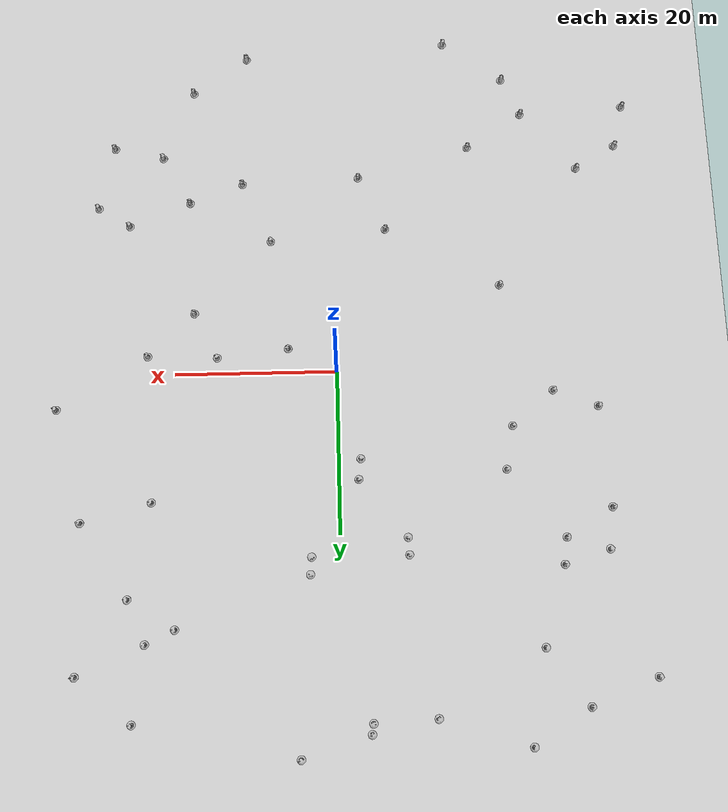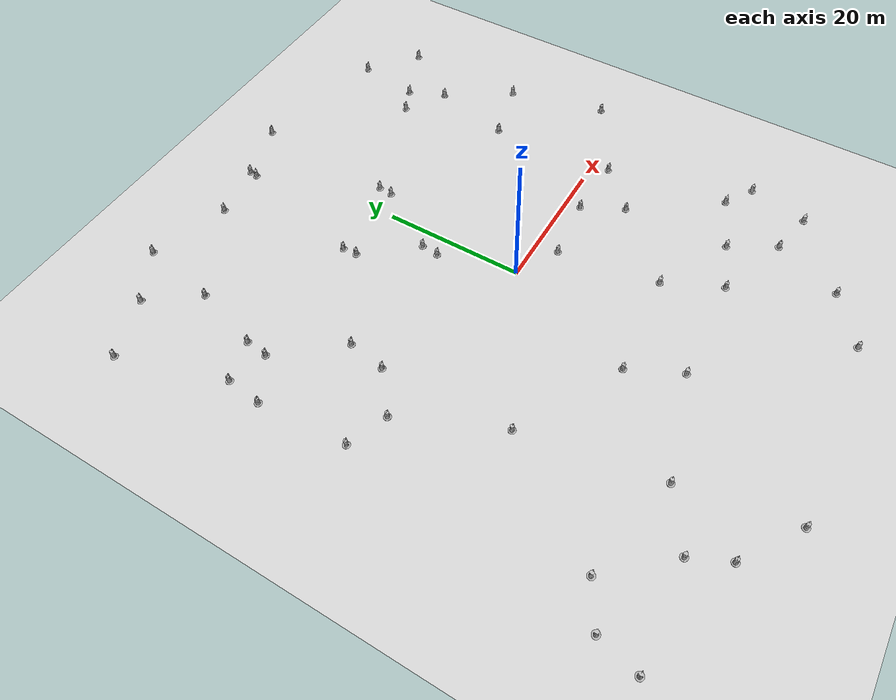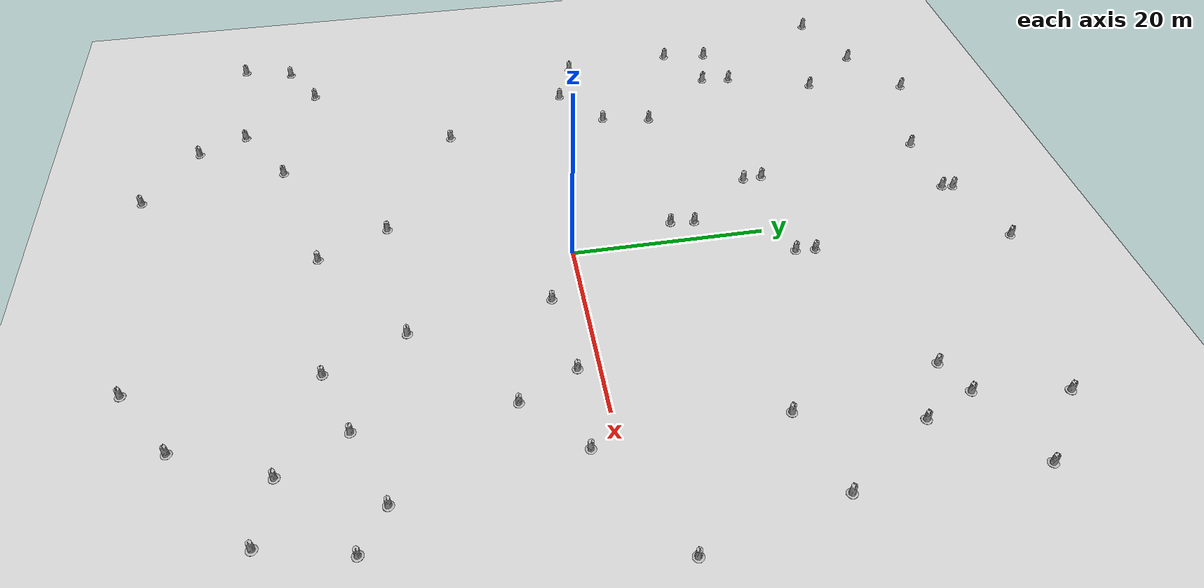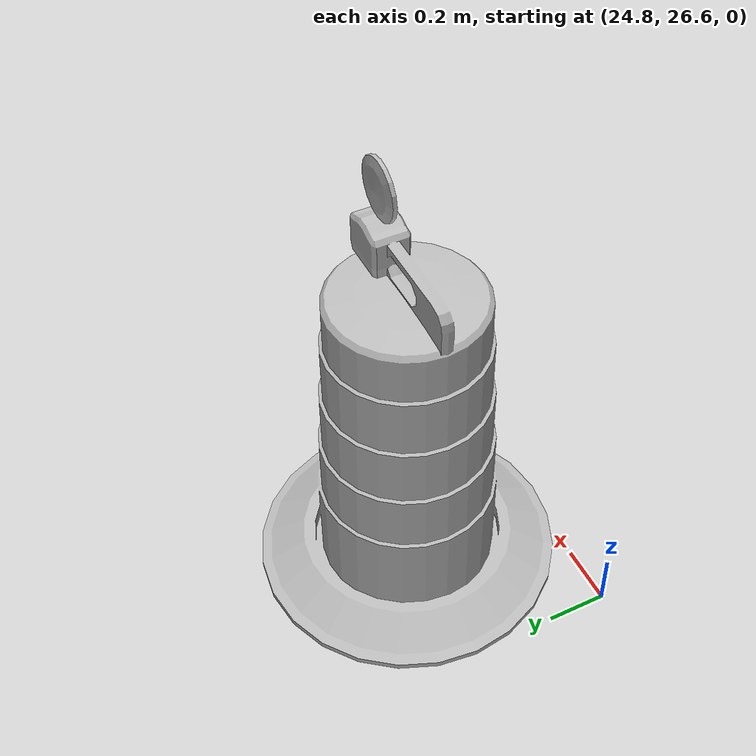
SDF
<sdf version="1.5">
 <world name="igvc">
  <include><uri>model://ground</uri></include>
  <gravity>0 0 -9.8</gravity>
  <magnetic_field>6e-06 2.3e-05 -4.2e-05</magnetic_field>
  <atmosphere type="adiabatic"/>
  <physics name="default_physics" default="0" type="ode">
   <max_step_size>0.001</max_step_size>
   <real_time_factor>1</real_time_factor>
   <real_time_update_rate>1000</real_time_update_rate>
  </physics>
  <scene><ambient>0.4 0.4 0.4 1</ambient><background>0.7 0.7 0.7 1</background><shadows>1</shadows></scene>
  <audio><device>default</device></audio>
  <spherical_coordinates>
   <surface_model>EARTH_WGS84</surface_model>
   <latitude_deg>0</latitude_deg>
   <longitude_deg>0</longitude_deg>
   <elevation>0</elevation>
   <heading_deg>0</heading_deg>
  </spherical_coordinates>
  <model name="Construction Barrel">
   <link name="link">
    <inertial>
     <pose>0 0 0.4 0 -0 0</pose>
     <mass>500</mass>
     <inertia><ixx>51.2096</ixx><iyy>51.2096</iyy><izz>25</izz><ixy>0</ixy><ixz>0</ixz><iyz>0</iyz></inertia>
    </inertial>
    <collision name="collision">
     <geometry><mesh><uri>model://construction_barrel/meshes/construction_barrel.dae</uri></mesh></geometry>
    </collision>
    <visual name="visual">
     <geometry><mesh><uri>model://construction_barrel/meshes/construction_barrel.dae</uri></mesh></geometry>
    </visual>
   </link>
   <pose>-14.8124 -44.5797 -0 1e-06 -1e-06 -4.9e-05</pose>
  </model>
  <model name="Construction Barrel_0">
   <link name="link">
    <inertial>
     <pose>0 0 0.4 0 -0 0</pose>
     <mass>500</mass>
     <inertia><ixx>51.2096</ixx><iyy>51.2096</iyy><izz>25</izz><ixy>0</ixy><ixz>0</ixz><iyz>0</iyz></inertia>
    </inertial>
    <collision name="collision">
     <geometry><mesh><uri>model://construction_barrel/meshes/construction_barrel.dae</uri></mesh></geometry>
    </collision>
    <visual name="visual">
     <geometry><mesh><uri>model://construction_barrel/meshes/construction_barrel.dae</uri></mesh></geometry>
    </visual>
   </link>
   <pose>-22.3429 -39.2326 -0 1e-06 -1e-06 -4.8e-05</pose>
  </model>
  <model name="Construction Barrel_1">
   <link name="link">
    <inertial>
     <pose>0 0 0.4 0 -0 0</pose>
     <mass>500</mass>
     <inertia><ixx>51.2096</ixx><iyy>51.2096</iyy><izz>25</izz><ixy>0</ixy><ixz>0</ixz><iyz>0</iyz></inertia>
    </inertial>
    <collision name="collision">
     <geometry><mesh><uri>model://construction_barrel/meshes/construction_barrel.dae</uri></mesh></geometry>
    </collision>
    <visual name="visual">
     <geometry><mesh><uri>model://construction_barrel/meshes/construction_barrel.dae</uri></mesh></geometry>
    </visual>
   </link>
   <pose>-37.9433 -35.0523 0 1e-06 1e-06 -5.3e-05</pose>
  </model>
  <model name="Construction Barrel_2">
   <link name="link">
    <inertial>
     <pose>0 0 0.4 0 -0 0</pose>
     <mass>500</mass>
     <inertia><ixx>51.2096</ixx><iyy>51.2096</iyy><izz>25</izz><ixy>0</ixy><ixz>0</ixz><iyz>0</iyz></inertia>
    </inertial>
    <collision name="collision">
     <geometry><mesh><uri>model://construction_barrel/meshes/construction_barrel.dae</uri></mesh></geometry>
    </collision>
    <visual name="visual">
     <geometry><mesh><uri>model://construction_barrel/meshes/construction_barrel.dae</uri></mesh></geometry>
    </visual>
   </link>
   <pose>-36.5473 -29.5528 0 1e-06 1e-06 -5.2e-05</pose>
  </model>
  <model name="Construction Barrel_3">
   <link name="link">
    <inertial>
     <pose>0 0 0.4 0 -0 0</pose>
     <mass>500</mass>
     <inertia><ixx>51.2096</ixx><iyy>51.2096</iyy><izz>25</izz><ixy>0</ixy><ixz>0</ixz><iyz>0</iyz></inertia>
    </inertial>
    <collision name="collision">
     <geometry><mesh><uri>model://construction_barrel/meshes/construction_barrel.dae</uri></mesh></geometry>
    </collision>
    <visual name="visual">
     <geometry><mesh><uri>model://construction_barrel/meshes/construction_barrel.dae</uri></mesh></geometry>
    </visual>
   </link>
   <pose>-32.0546 4.89676 -1e-06 2e-06 -1e-06 -5.2e-05</pose>
  </model>
  <model name="Construction Barrel_4">
   <link name="link">
    <inertial>
     <pose>0 0 0.4 0 -0 0</pose>
     <mass>500</mass>
     <inertia><ixx>51.2096</ixx><iyy>51.2096</iyy><izz>25</izz><ixy>0</ixy><ixz>0</ixz><iyz>0</iyz></inertia>
    </inertial>
    <collision name="collision">
     <geometry><mesh><uri>model://construction_barrel/meshes/construction_barrel.dae</uri></mesh></geometry>
    </collision>
    <visual name="visual">
     <geometry><mesh><uri>model://construction_barrel/meshes/construction_barrel.dae</uri></mesh></geometry>
    </visual>
   </link>
   <pose>-32.8999 17.3168 -1e-06 2e-06 -1e-06 -5.1e-05</pose>
  </model>
  <model name="Construction Barrel_5">
   <link name="link">
    <inertial>
     <pose>0 0 0.4 0 -0 0</pose>
     <mass>500</mass>
     <inertia><ixx>51.2096</ixx><iyy>51.2096</iyy><izz>25</izz><ixy>0</ixy><ixz>0</ixz><iyz>0</iyz></inertia>
    </inertial>
    <collision name="collision">
     <geometry><mesh><uri>model://construction_barrel/meshes/construction_barrel.dae</uri></mesh></geometry>
    </collision>
    <visual name="visual">
     <geometry><mesh><uri>model://construction_barrel/meshes/construction_barrel.dae</uri></mesh></geometry>
    </visual>
   </link>
   <pose>-32.2495 22.3071 -1e-06 2e-06 -1e-06 -4.9e-05</pose>
  </model>
  <model name="Construction Barrel_6">
   <link name="link">
    <inertial>
     <pose>0 0 0.4 0 -0 0</pose>
     <mass>500</mass>
     <inertia><ixx>51.2096</ixx><iyy>51.2096</iyy><izz>25</izz><ixy>0</ixy><ixz>0</ixz><iyz>0</iyz></inertia>
    </inertial>
    <collision name="collision">
     <geometry><mesh><uri>model://construction_barrel/meshes/construction_barrel.dae</uri></mesh></geometry>
    </collision>
    <visual name="visual">
     <geometry><mesh><uri>model://construction_barrel/meshes/construction_barrel.dae</uri></mesh></geometry>
    </visual>
   </link>
   <pose>-36.7697 37.094 -1e-06 2e-06 -1e-06 -4.8e-05</pose>
  </model>
  <model name="Construction Barrel_7">
   <link name="link">
    <inertial>
     <pose>0 0 0.4 0 -0 0</pose>
     <mass>500</mass>
     <inertia><ixx>51.2096</ixx><iyy>51.2096</iyy><izz>25</izz><ixy>0</ixy><ixz>0</ixz><iyz>0</iyz></inertia>
    </inertial>
    <collision name="collision">
     <geometry><mesh><uri>model://construction_barrel/meshes/construction_barrel.dae</uri></mesh></geometry>
    </collision>
    <visual name="visual">
     <geometry><mesh><uri>model://construction_barrel/meshes/construction_barrel.dae</uri></mesh></geometry>
    </visual>
   </link>
   <pose>-28.7223 40.2869 -0 0 -0 -3.8e-05</pose>
  </model>
  <model name="Construction Barrel_8">
   <link name="link">
    <inertial>
     <pose>0 0 0.4 0 -0 0</pose>
     <mass>500</mass>
     <inertia><ixx>51.2096</ixx><iyy>51.2096</iyy><izz>25</izz><ixy>0</ixy><ixz>0</ixz><iyz>0</iyz></inertia>
    </inertial>
    <collision name="collision">
     <geometry><mesh><uri>model://construction_barrel/meshes/construction_barrel.dae</uri></mesh></geometry>
    </collision>
    <visual name="visual">
     <geometry><mesh><uri>model://construction_barrel/meshes/construction_barrel.dae</uri></mesh></geometry>
    </visual>
   </link>
   <pose>-21.8346 44.567 0 1e-06 1e-06 -4.3e-05</pose>
  </model>
  <model name="Construction Barrel_9">
   <link name="link">
    <inertial>
     <pose>0 0 0.4 0 -0 0</pose>
     <mass>500</mass>
     <inertia><ixx>51.2096</ixx><iyy>51.2096</iyy><izz>25</izz><ixy>0</ixy><ixz>0</ixz><iyz>0</iyz></inertia>
    </inertial>
    <collision name="collision">
     <geometry><mesh><uri>model://construction_barrel/meshes/construction_barrel.dae</uri></mesh></geometry>
    </collision>
    <visual name="visual">
     <geometry><mesh><uri>model://construction_barrel/meshes/construction_barrel.dae</uri></mesh></geometry>
    </visual>
   </link>
   <pose>-11.0265 41.2331 0 1e-06 1e-06 -4.2e-05</pose>
  </model>
  <model name="Construction Barrel_10">
   <link name="link">
    <inertial>
     <pose>0 0 0.4 0 -0 0</pose>
     <mass>500</mass>
     <inertia><ixx>51.2096</ixx><iyy>51.2096</iyy><izz>25</izz><ixy>0</ixy><ixz>0</ixz><iyz>0</iyz></inertia>
    </inertial>
    <collision name="collision">
     <geometry><mesh><uri>model://construction_barrel/meshes/construction_barrel.dae</uri></mesh></geometry>
    </collision>
    <visual name="visual">
     <geometry><mesh><uri>model://construction_barrel/meshes/construction_barrel.dae</uri></mesh></geometry>
    </visual>
   </link>
   <pose>-3.3041 42.8061 -1e-06 2e-06 -1e-06 -4.1e-05</pose>
  </model>
  <model name="Construction Barrel_11">
   <link name="link">
    <inertial>
     <pose>0 0 0.4 0 -0 0</pose>
     <mass>500</mass>
     <inertia><ixx>51.2096</ixx><iyy>51.2096</iyy><izz>25</izz><ixy>0</ixy><ixz>0</ixz><iyz>0</iyz></inertia>
    </inertial>
    <collision name="collision">
     <geometry><mesh><uri>model://construction_barrel/meshes/construction_barrel.dae</uri></mesh></geometry>
    </collision>
    <visual name="visual">
     <geometry><mesh><uri>model://construction_barrel/meshes/construction_barrel.dae</uri></mesh></geometry>
    </visual>
   </link>
   <pose>-3.47902 41.6082 0 0 0 -4.6e-05</pose>
  </model>
  <model name="Construction Barrel_12">
   <link name="link">
    <inertial>
     <pose>0 0 0.4 0 -0 0</pose>
     <mass>500</mass>
     <inertia><ixx>51.2096</ixx><iyy>51.2096</iyy><izz>25</izz><ixy>0</ixy><ixz>0</ixz><iyz>0</iyz></inertia>
    </inertial>
    <collision name="collision">
     <geometry><mesh><uri>model://construction_barrel/meshes/construction_barrel.dae</uri></mesh></geometry>
    </collision>
    <visual name="visual">
     <geometry><mesh><uri>model://construction_barrel/meshes/construction_barrel.dae</uri></mesh></geometry>
    </visual>
   </link>
   <pose>4.88573 45.3849 -1e-06 2e-06 -1e-06 -4.1e-05</pose>
  </model>
  <model name="Construction Barrel_13">
   <link name="link">
    <inertial>
     <pose>0 0 0.4 0 -0 0</pose>
     <mass>500</mass>
     <inertia><ixx>51.2096</ixx><iyy>51.2096</iyy><izz>25</izz><ixy>0</ixy><ixz>0</ixz><iyz>0</iyz></inertia>
    </inertial>
    <collision name="collision">
     <geometry><mesh><uri>model://construction_barrel/meshes/construction_barrel.dae</uri></mesh></geometry>
    </collision>
    <visual name="visual">
     <geometry><mesh><uri>model://construction_barrel/meshes/construction_barrel.dae</uri></mesh></geometry>
    </visual>
   </link>
   <pose>24.432 41.1999 -0 0 -0 -3.8e-05</pose>
  </model>
  <model name="Construction Barrel_14">
   <link name="link">
    <inertial>
     <pose>0 0 0.4 0 -0 0</pose>
     <mass>500</mass>
     <inertia><ixx>51.2096</ixx><iyy>51.2096</iyy><izz>25</izz><ixy>0</ixy><ixz>0</ixz><iyz>0</iyz></inertia>
    </inertial>
    <collision name="collision">
     <geometry><mesh><uri>model://construction_barrel/meshes/construction_barrel.dae</uri></mesh></geometry>
    </collision>
    <visual name="visual">
     <geometry><mesh><uri>model://construction_barrel/meshes/construction_barrel.dae</uri></mesh></geometry>
    </visual>
   </link>
   <pose>31.2012 17.9892 0 0 0 -4.1e-05</pose>
  </model>
  <model name="Construction Barrel_15">
   <link name="link">
    <inertial>
     <pose>0 0 0.4 0 -0 0</pose>
     <mass>500</mass>
     <inertia><ixx>51.2096</ixx><iyy>51.2096</iyy><izz>25</izz><ixy>0</ixy><ixz>0</ixz><iyz>0</iyz></inertia>
    </inertial>
    <collision name="collision">
     <geometry><mesh><uri>model://construction_barrel/meshes/construction_barrel.dae</uri></mesh></geometry>
    </collision>
    <visual name="visual">
     <geometry><mesh><uri>model://construction_barrel/meshes/construction_barrel.dae</uri></mesh></geometry>
    </visual>
   </link>
   <pose>34.5802 4.09206 -3e-06 -6e-06 -5e-06 -3.6e-05</pose>
  </model>
  <model name="Construction Barrel_16">
   <link name="link">
    <inertial>
     <pose>0 0 0.4 0 -0 0</pose>
     <mass>500</mass>
     <inertia><ixx>51.2096</ixx><iyy>51.2096</iyy><izz>25</izz><ixy>0</ixy><ixz>0</ixz><iyz>0</iyz></inertia>
    </inertial>
    <collision name="collision">
     <geometry><mesh><uri>model://construction_barrel/meshes/construction_barrel.dae</uri></mesh></geometry>
    </collision>
    <visual name="visual">
     <geometry><mesh><uri>model://construction_barrel/meshes/construction_barrel.dae</uri></mesh></geometry>
    </visual>
   </link>
   <pose>30.1517 -22.1626 -1e-06 0 5e-06 -4e-05</pose>
  </model>
  <model name="Construction Barrel_17">
   <link name="link">
    <inertial>
     <pose>0 0 0.4 0 -0 0</pose>
     <mass>500</mass>
     <inertia><ixx>51.2096</ixx><iyy>51.2096</iyy><izz>25</izz><ixy>0</ixy><ixz>0</ixz><iyz>0</iyz></inertia>
    </inertial>
    <collision name="collision">
     <geometry><mesh><uri>model://construction_barrel/meshes/construction_barrel.dae</uri></mesh></geometry>
    </collision>
    <visual name="visual">
     <geometry><mesh><uri>model://construction_barrel/meshes/construction_barrel.dae</uri></mesh></geometry>
    </visual>
   </link>
   <pose>28.2767 -30.3888 0 1e-06 1e-06 -3.9e-05</pose>
  </model>
  <model name="Construction Barrel_18">
   <link name="link">
    <inertial>
     <pose>0 0 0.4 0 -0 0</pose>
     <mass>500</mass>
     <inertia><ixx>51.2096</ixx><iyy>51.2096</iyy><izz>25</izz><ixy>0</ixy><ixz>0</ixz><iyz>0</iyz></inertia>
    </inertial>
    <collision name="collision">
     <geometry><mesh><uri>model://construction_barrel/meshes/construction_barrel.dae</uri></mesh></geometry>
    </collision>
    <visual name="visual">
     <geometry><mesh><uri>model://construction_barrel/meshes/construction_barrel.dae</uri></mesh></geometry>
    </visual>
   </link>
   <pose>18.1383 -38.0821 -2e-06 4e-06 7e-06 -3.9e-05</pose>
  </model>
  <model name="Construction Barrel_19">
   <link name="link">
    <inertial>
     <pose>0 0 0.4 0 -0 0</pose>
     <mass>500</mass>
     <inertia><ixx>51.2096</ixx><iyy>51.2096</iyy><izz>25</izz><ixy>0</ixy><ixz>0</ixz><iyz>0</iyz></inertia>
    </inertial>
    <collision name="collision">
     <geometry><mesh><uri>model://construction_barrel/meshes/construction_barrel.dae</uri></mesh></geometry>
    </collision>
    <visual name="visual">
     <geometry><mesh><uri>model://construction_barrel/meshes/construction_barrel.dae</uri></mesh></geometry>
    </visual>
   </link>
   <pose>11.2473 -42.8959 -4e-06 -5e-06 -7e-06 -3.8e-05</pose>
  </model>
  <model name="Construction Barrel_20">
   <link name="link">
    <inertial>
     <pose>0 0 0.4 0 -0 0</pose>
     <mass>500</mass>
     <inertia><ixx>51.2096</ixx><iyy>51.2096</iyy><izz>25</izz><ixy>0</ixy><ixz>0</ixz><iyz>0</iyz></inertia>
    </inertial>
    <collision name="collision">
     <geometry><mesh><uri>model://construction_barrel/meshes/construction_barrel.dae</uri></mesh></geometry>
    </collision>
    <visual name="visual">
     <geometry><mesh><uri>model://construction_barrel/meshes/construction_barrel.dae</uri></mesh></geometry>
    </visual>
   </link>
   <pose>-8.25854 22.5162 -2e-06 -5e-06 -4e-06 -4.1e-05</pose>
  </model>
  <model name="Construction Barrel_21">
   <link name="link">
    <inertial>
     <pose>0 0 0.4 0 -0 0</pose>
     <mass>500</mass>
     <inertia><ixx>51.2096</ixx><iyy>51.2096</iyy><izz>25</izz><ixy>0</ixy><ixz>0</ixz><iyz>0</iyz></inertia>
    </inertial>
    <collision name="collision">
     <geometry><mesh><uri>model://construction_barrel/meshes/construction_barrel.dae</uri></mesh></geometry>
    </collision>
    <visual name="visual">
     <geometry><mesh><uri>model://construction_barrel/meshes/construction_barrel.dae</uri></mesh></geometry>
    </visual>
   </link>
   <pose>-8.15835 20.4451 -2e-06 1e-06 8e-06 -3.6e-05</pose>
  </model>
  <model name="Construction Barrel_22">
   <link name="link">
    <inertial>
     <pose>0 0 0.4 0 -0 0</pose>
     <mass>500</mass>
     <inertia><ixx>51.2096</ixx><iyy>51.2096</iyy><izz>25</izz><ixy>0</ixy><ixz>0</ixz><iyz>0</iyz></inertia>
    </inertial>
    <collision name="collision">
     <geometry><mesh><uri>model://construction_barrel/meshes/construction_barrel.dae</uri></mesh></geometry>
    </collision>
    <visual name="visual">
     <geometry><mesh><uri>model://construction_barrel/meshes/construction_barrel.dae</uri></mesh></geometry>
    </visual>
   </link>
   <pose>-2.41566 13.3859 -1e-06 4e-06 -2e-06 -3.1e-05</pose>
  </model>
  <model name="Construction Barrel_23">
   <link name="link">
    <inertial>
     <pose>0 0 0.4 0 -0 0</pose>
     <mass>500</mass>
     <inertia><ixx>51.2096</ixx><iyy>51.2096</iyy><izz>25</izz><ixy>0</ixy><ixz>0</ixz><iyz>0</iyz></inertia>
    </inertial>
    <collision name="collision">
     <geometry><mesh><uri>model://construction_barrel/meshes/construction_barrel.dae</uri></mesh></geometry>
    </collision>
    <visual name="visual">
     <geometry><mesh><uri>model://construction_barrel/meshes/construction_barrel.dae</uri></mesh></geometry>
    </visual>
   </link>
   <pose>-2.69813 10.8646 0 1e-06 1e-06 -3e-05</pose>
  </model>
  <model name="Construction Barrel_24">
   <link name="link">
    <inertial>
     <pose>0 0 0.4 0 -0 0</pose>
     <mass>500</mass>
     <inertia><ixx>51.2096</ixx><iyy>51.2096</iyy><izz>25</izz><ixy>0</ixy><ixz>0</ixz><iyz>0</iyz></inertia>
    </inertial>
    <collision name="collision">
     <geometry><mesh><uri>model://construction_barrel/meshes/construction_barrel.dae</uri></mesh></geometry>
    </collision>
    <visual name="visual">
     <geometry><mesh><uri>model://construction_barrel/meshes/construction_barrel.dae</uri></mesh></geometry>
    </visual>
   </link>
   <pose>3.58483 24.6003 0 0 0 -2.8e-05</pose>
  </model>
  <model name="Construction Barrel_25">
   <link name="link">
    <inertial>
     <pose>0 0 0.4 0 -0 0</pose>
     <mass>500</mass>
     <inertia><ixx>51.2096</ixx><iyy>51.2096</iyy><izz>25</izz><ixy>0</ixy><ixz>0</ixz><iyz>0</iyz></inertia>
    </inertial>
    <collision name="collision">
     <geometry><mesh><uri>model://construction_barrel/meshes/construction_barrel.dae</uri></mesh></geometry>
    </collision>
    <visual name="visual">
     <geometry><mesh><uri>model://construction_barrel/meshes/construction_barrel.dae</uri></mesh></geometry>
    </visual>
   </link>
   <pose>3.42479 22.5464 -0 0 0 -3.2e-05</pose>
  </model>
  <model name="Construction Barrel_26">
   <link name="link">
    <inertial>
     <pose>0 0 0.4 0 -0 0</pose>
     <mass>500</mass>
     <inertia><ixx>51.2096</ixx><iyy>51.2096</iyy><izz>25</izz><ixy>0</ixy><ixz>0</ixz><iyz>0</iyz></inertia>
    </inertial>
    <collision name="collision">
     <geometry><mesh><uri>model://construction_barrel/meshes/construction_barrel.dae</uri></mesh></geometry>
    </collision>
    <visual name="visual">
     <geometry><mesh><uri>model://construction_barrel/meshes/construction_barrel.dae</uri></mesh></geometry>
    </visual>
   </link>
   <pose>-23.8485 33.5518 1e-06 3e-06 2e-06 -3e-05</pose>
  </model>
  <model name="Construction Barrel_27">
   <link name="link">
    <inertial>
     <pose>0 0 0.4 0 -0 0</pose>
     <mass>500</mass>
     <inertia><ixx>51.2096</ixx><iyy>51.2096</iyy><izz>25</izz><ixy>0</ixy><ixz>0</ixz><iyz>0</iyz></inertia>
    </inertial>
    <collision name="collision">
     <geometry><mesh><uri>model://construction_barrel/meshes/construction_barrel.dae</uri></mesh></geometry>
    </collision>
    <visual name="visual">
     <geometry><mesh><uri>model://construction_barrel/meshes/construction_barrel.dae</uri></mesh></geometry>
    </visual>
   </link>
   <pose>-26.7254 24.022 -1e-06 4e-06 -2e-06 -3.2e-05</pose>
  </model>
  <model name="Construction Barrel_28">
   <link name="link">
    <inertial>
     <pose>0 0 0.4 0 -0 0</pose>
     <mass>500</mass>
     <inertia><ixx>51.2096</ixx><iyy>51.2096</iyy><izz>25</izz><ixy>0</ixy><ixz>0</ixz><iyz>0</iyz></inertia>
    </inertial>
    <collision name="collision">
     <geometry><mesh><uri>model://construction_barrel/meshes/construction_barrel.dae</uri></mesh></geometry>
    </collision>
    <visual name="visual">
     <geometry><mesh><uri>model://construction_barrel/meshes/construction_barrel.dae</uri></mesh></geometry>
    </visual>
   </link>
   <pose>-27.1523 20.821 0 1e-06 1e-06 -2.9e-05</pose>
  </model>
  <model name="Construction Barrel_29">
   <link name="link">
    <inertial>
     <pose>0 0 0.4 0 -0 0</pose>
     <mass>500</mass>
     <inertia><ixx>51.2096</ixx><iyy>51.2096</iyy><izz>25</izz><ixy>0</ixy><ixz>0</ixz><iyz>0</iyz></inertia>
    </inertial>
    <collision name="collision">
     <geometry><mesh><uri>model://construction_barrel/meshes/construction_barrel.dae</uri></mesh></geometry>
    </collision>
    <visual name="visual">
     <geometry><mesh><uri>model://construction_barrel/meshes/construction_barrel.dae</uri></mesh></geometry>
    </visual>
   </link>
   <pose>-20.399 12.5078 -2e-06 0 7e-06 -2.9e-05</pose>
  </model>
  <model name="Construction Barrel_30">
   <link name="link">
    <inertial>
     <pose>0 0 0.4 0 -0 0</pose>
     <mass>500</mass>
     <inertia><ixx>51.2096</ixx><iyy>51.2096</iyy><izz>25</izz><ixy>0</ixy><ixz>0</ixz><iyz>0</iyz></inertia>
    </inertial>
    <collision name="collision">
     <geometry><mesh><uri>model://construction_barrel/meshes/construction_barrel.dae</uri></mesh></geometry>
    </collision>
    <visual name="visual">
     <geometry><mesh><uri>model://construction_barrel/meshes/construction_barrel.dae</uri></mesh></geometry>
    </visual>
   </link>
   <pose>-21.3894 7.16847 0 1e-06 1e-06 -2.1e-05</pose>
  </model>
  <model name="Construction Barrel_31">
   <link name="link">
    <inertial>
     <pose>0 0 0.4 0 -0 0</pose>
     <mass>500</mass>
     <inertia><ixx>51.2096</ixx><iyy>51.2096</iyy><izz>25</izz><ixy>0</ixy><ixz>0</ixz><iyz>0</iyz></inertia>
    </inertial>
    <collision name="collision">
     <geometry><mesh><uri>model://construction_barrel/meshes/construction_barrel.dae</uri></mesh></geometry>
    </collision>
    <visual name="visual">
     <geometry><mesh><uri>model://construction_barrel/meshes/construction_barrel.dae</uri></mesh></geometry>
    </visual>
   </link>
   <pose>-26.6113 2.81764 -1e-06 -8e-06 -2e-06 -1.8e-05</pose>
  </model>
  <model name="Construction Barrel_32">
   <link name="link">
    <inertial>
     <pose>0 0 0.4 0 -0 0</pose>
     <mass>500</mass>
     <inertia><ixx>51.2096</ixx><iyy>51.2096</iyy><izz>25</izz><ixy>0</ixy><ixz>0</ixz><iyz>0</iyz></inertia>
    </inertial>
    <collision name="collision">
     <geometry><mesh><uri>model://construction_barrel/meshes/construction_barrel.dae</uri></mesh></geometry>
    </collision>
    <visual name="visual">
     <geometry><mesh><uri>model://construction_barrel/meshes/construction_barrel.dae</uri></mesh></geometry>
    </visual>
   </link>
   <pose>-20.6915 -10.8852 0 0 0 -1.7e-05</pose>
  </model>
  <model name="Construction Barrel_33">
   <link name="link">
    <inertial>
     <pose>0 0 0.4 0 -0 0</pose>
     <mass>500</mass>
     <inertia><ixx>51.2096</ixx><iyy>51.2096</iyy><izz>25</izz><ixy>0</ixy><ixz>0</ixz><iyz>0</iyz></inertia>
    </inertial>
    <collision name="collision">
     <geometry><mesh><uri>model://construction_barrel/meshes/construction_barrel.dae</uri></mesh></geometry>
    </collision>
    <visual name="visual">
     <geometry><mesh><uri>model://construction_barrel/meshes/construction_barrel.dae</uri></mesh></geometry>
    </visual>
   </link>
   <pose>-31.4084 -26.5045 0 0 0 -1.6e-05</pose>
  </model>
  <model name="Construction Barrel_34">
   <link name="link">
    <inertial>
     <pose>0 0 0.4 0 -0 0</pose>
     <mass>500</mass>
     <inertia><ixx>51.2096</ixx><iyy>51.2096</iyy><izz>25</izz><ixy>0</ixy><ixz>0</ixz><iyz>0</iyz></inertia>
    </inertial>
    <collision name="collision">
     <geometry><mesh><uri>model://construction_barrel/meshes/construction_barrel.dae</uri></mesh></geometry>
    </collision>
    <visual name="visual">
     <geometry><mesh><uri>model://construction_barrel/meshes/construction_barrel.dae</uri></mesh></geometry>
    </visual>
   </link>
   <pose>-24.584 -34.2505 -1e-06 1e-06 4e-06 -2.3e-05</pose>
  </model>
  <model name="Construction Barrel_35">
   <link name="link">
    <inertial>
     <pose>0 0 0.4 0 -0 0</pose>
     <mass>500</mass>
     <inertia><ixx>51.2096</ixx><iyy>51.2096</iyy><izz>25</izz><ixy>0</ixy><ixz>0</ixz><iyz>0</iyz></inertia>
    </inertial>
    <collision name="collision">
     <geometry><mesh><uri>model://construction_barrel/meshes/construction_barrel.dae</uri></mesh></geometry>
    </collision>
    <visual name="visual">
     <geometry><mesh><uri>model://construction_barrel/meshes/construction_barrel.dae</uri></mesh></geometry>
    </visual>
   </link>
   <pose>-17.4497 -29.6849 -3e-06 -7e-06 -1.2e-05 -2.3e-05</pose>
  </model>
  <model name="Construction Barrel_36">
   <link name="link">
    <inertial>
     <pose>0 0 0.4 0 -0 0</pose>
     <mass>500</mass>
     <inertia><ixx>51.2096</ixx><iyy>51.2096</iyy><izz>25</izz><ixy>0</ixy><ixz>0</ixz><iyz>0</iyz></inertia>
    </inertial>
    <collision name="collision">
     <geometry><mesh><uri>model://construction_barrel/meshes/construction_barrel.dae</uri></mesh></geometry>
    </collision>
    <visual name="visual">
     <geometry><mesh><uri>model://construction_barrel/meshes/construction_barrel.dae</uri></mesh></geometry>
    </visual>
   </link>
   <pose>-3.17118 -25.7296 -1e-06 3e-06 1e-05 -2.1e-05</pose>
  </model>
  <model name="Construction Barrel_37">
   <link name="link">
    <inertial>
     <pose>0 0 0.4 0 -0 0</pose>
     <mass>500</mass>
     <inertia><ixx>51.2096</ixx><iyy>51.2096</iyy><izz>25</izz><ixy>0</ixy><ixz>0</ixz><iyz>0</iyz></inertia>
    </inertial>
    <collision name="collision">
     <geometry><mesh><uri>model://construction_barrel/meshes/construction_barrel.dae</uri></mesh></geometry>
    </collision>
    <visual name="visual">
     <geometry><mesh><uri>model://construction_barrel/meshes/construction_barrel.dae</uri></mesh></geometry>
    </visual>
   </link>
   <pose>-6.47555 -18.6348 0 0 -0 -1.8e-05</pose>
  </model>
  <model name="Construction Barrel_38">
   <link name="link">
    <inertial>
     <pose>0 0 0.4 0 -0 0</pose>
     <mass>500</mass>
     <inertia><ixx>51.2096</ixx><iyy>51.2096</iyy><izz>25</izz><ixy>0</ixy><ixz>0</ixz><iyz>0</iyz></inertia>
    </inertial>
    <collision name="collision">
     <geometry><mesh><uri>model://construction_barrel/meshes/construction_barrel.dae</uri></mesh></geometry>
    </collision>
    <visual name="visual">
     <geometry><mesh><uri>model://construction_barrel/meshes/construction_barrel.dae</uri></mesh></geometry>
    </visual>
   </link>
   <pose>8.13634 -17.2615 -0 0 -0 -1.7e-05</pose>
  </model>
  <model name="Construction Barrel_39">
   <link name="link">
    <inertial>
     <pose>0 0 0.4 0 -0 0</pose>
     <mass>500</mass>
     <inertia><ixx>51.2096</ixx><iyy>51.2096</iyy><izz>25</izz><ixy>0</ixy><ixz>0</ixz><iyz>0</iyz></inertia>
    </inertial>
    <collision name="collision">
     <geometry><mesh><uri>model://construction_barrel/meshes/construction_barrel.dae</uri></mesh></geometry>
    </collision>
    <visual name="visual">
     <geometry><mesh><uri>model://construction_barrel/meshes/construction_barrel.dae</uri></mesh></geometry>
    </visual>
   </link>
   <pose>6.0346 -3.12055 -2e-06 -1.1e-05 -4e-06 -1.6e-05</pose>
  </model>
  <model name="Construction Barrel_40">
   <link name="link">
    <inertial>
     <pose>0 0 0.4 0 -0 0</pose>
     <mass>500</mass>
     <inertia><ixx>51.2096</ixx><iyy>51.2096</iyy><izz>25</izz><ixy>0</ixy><ixz>0</ixz><iyz>0</iyz></inertia>
    </inertial>
    <collision name="collision">
     <geometry><mesh><uri>model://construction_barrel/meshes/construction_barrel.dae</uri></mesh></geometry>
    </collision>
    <visual name="visual">
     <geometry><mesh><uri>model://construction_barrel/meshes/construction_barrel.dae</uri></mesh></geometry>
    </visual>
   </link>
   <pose>14.8479 -2.09827 0 0 -0 -1.6e-05</pose>
  </model>
  <model name="Construction Barrel_41">
   <link name="link">
    <inertial>
     <pose>0 0 0.4 0 -0 0</pose>
     <mass>500</mass>
     <inertia><ixx>51.2096</ixx><iyy>51.2096</iyy><izz>25</izz><ixy>0</ixy><ixz>0</ixz><iyz>0</iyz></inertia>
    </inertial>
    <collision name="collision">
     <geometry><mesh><uri>model://construction_barrel/meshes/construction_barrel.dae</uri></mesh></geometry>
    </collision>
    <visual name="visual">
     <geometry><mesh><uri>model://construction_barrel/meshes/construction_barrel.dae</uri></mesh></geometry>
    </visual>
   </link>
   <pose>19.613 30.6682 -3e-06 -7e-06 -1.2e-05 -1.4e-05</pose>
  </model>
  <model name="Construction Barrel_42">
   <link name="link">
    <inertial>
     <pose>0 0 0.4 0 -0 0</pose>
     <mass>500</mass>
     <inertia><ixx>51.2096</ixx><iyy>51.2096</iyy><izz>25</izz><ixy>0</ixy><ixz>0</ixz><iyz>0</iyz></inertia>
    </inertial>
    <collision name="collision">
     <geometry><mesh><uri>model://construction_barrel/meshes/construction_barrel.dae</uri></mesh></geometry>
    </collision>
    <visual name="visual">
     <geometry><mesh><uri>model://construction_barrel/meshes/construction_barrel.dae</uri></mesh></geometry>
    </visual>
   </link>
   <pose>23.1133 32.2837 -3e-06 -7e-06 -1.2e-05 -1.2e-05</pose>
  </model>
  <model name="Construction Barrel_43">
   <link name="link">
    <inertial>
     <pose>0 0 0.4 0 -0 0</pose>
     <mass>500</mass>
     <inertia><ixx>51.2096</ixx><iyy>51.2096</iyy><izz>25</izz><ixy>0</ixy><ixz>0</ixz><iyz>0</iyz></inertia>
    </inertial>
    <collision name="collision">
     <geometry><mesh><uri>model://construction_barrel/meshes/construction_barrel.dae</uri></mesh></geometry>
    </collision>
    <visual name="visual">
     <geometry><mesh><uri>model://construction_barrel/meshes/construction_barrel.dae</uri></mesh></geometry>
    </visual>
   </link>
   <pose>31.1905 35.7836 -1e-06 3e-06 -2e-06 -1.1e-05</pose>
  </model>
  <model name="Construction Barrel_44">
   <link name="link">
    <inertial>
     <pose>0 0 0.4 0 -0 0</pose>
     <mass>500</mass>
     <inertia><ixx>51.2096</ixx><iyy>51.2096</iyy><izz>25</izz><ixy>0</ixy><ixz>0</ixz><iyz>0</iyz></inertia>
    </inertial>
    <collision name="collision">
     <geometry><mesh><uri>model://construction_barrel/meshes/construction_barrel.dae</uri></mesh></geometry>
    </collision>
    <visual name="visual">
     <geometry><mesh><uri>model://construction_barrel/meshes/construction_barrel.dae</uri></mesh></geometry>
    </visual>
   </link>
   <pose>25.305 27.0863 1e-06 1e-06 2e-06 -1e-05</pose>
  </model>
  <model name="Construction Barrel_45">
   <link name="link">
    <inertial>
     <pose>0 0 0.4 0 -0 0</pose>
     <mass>500</mass>
     <inertia><ixx>51.2096</ixx><iyy>51.2096</iyy><izz>25</izz><ixy>0</ixy><ixz>0</ixz><iyz>0</iyz></inertia>
    </inertial>
    <collision name="collision">
     <geometry><mesh><uri>model://construction_barrel/meshes/construction_barrel.dae</uri></mesh></geometry>
    </collision>
    <visual name="visual">
     <geometry><mesh><uri>model://construction_barrel/meshes/construction_barrel.dae</uri></mesh></geometry>
    </visual>
   </link>
   <pose>22.6612 15.708 1e-06 1e-06 2e-06 -9e-06</pose>
  </model>
  <model name="Construction Barrel_46">
   <link name="link">
    <inertial>
     <pose>0 0 0.4 0 -0 0</pose>
     <mass>500</mass>
     <inertia><ixx>51.2096</ixx><iyy>51.2096</iyy><izz>25</izz><ixy>0</ixy><ixz>0</ixz><iyz>0</iyz></inertia>
    </inertial>
    <collision name="collision">
     <geometry><mesh><uri>model://construction_barrel/meshes/construction_barrel.dae</uri></mesh></geometry>
    </collision>
    <visual name="visual">
     <geometry><mesh><uri>model://construction_barrel/meshes/construction_barrel.dae</uri></mesh></geometry>
    </visual>
   </link>
   <pose>23.4779 -2.42246 -3e-06 -7e-06 -1.2e-05 -8e-06</pose>
  </model>
  <model name="Construction Barrel_47">
   <link name="link">
    <inertial>
     <pose>0 0 0.4 0 -0 0</pose>
     <mass>500</mass>
     <inertia><ixx>51.2096</ixx><iyy>51.2096</iyy><izz>25</izz><ixy>0</ixy><ixz>0</ixz><iyz>0</iyz></inertia>
    </inertial>
    <collision name="collision">
     <geometry><mesh><uri>model://construction_barrel/meshes/construction_barrel.dae</uri></mesh></geometry>
    </collision>
    <visual name="visual">
     <geometry><mesh><uri>model://construction_barrel/meshes/construction_barrel.dae</uri></mesh></geometry>
    </visual>
   </link>
   <pose>17.7369 -7.87606 -0 0 0 -6e-06</pose>
  </model>
  <model name="Construction Barrel_48">
   <link name="link">
    <inertial>
     <pose>0 0 0.4 0 -0 0</pose>
     <mass>500</mass>
     <inertia><ixx>51.2096</ixx><iyy>51.2096</iyy><izz>25</izz><ixy>0</ixy><ixz>0</ixz><iyz>0</iyz></inertia>
    </inertial>
    <collision name="collision">
     <geometry><mesh><uri>model://construction_barrel/meshes/construction_barrel.dae</uri></mesh></geometry>
    </collision>
    <visual name="visual">
     <geometry><mesh><uri>model://construction_barrel/meshes/construction_barrel.dae</uri></mesh></geometry>
    </visual>
   </link>
   <pose>18.459 -22.6656 0 0 0 -5e-06</pose>
  </model>
  <model name="Construction Barrel_49">
   <link name="link">
    <inertial>
     <pose>0 0 0.4 0 -0 0</pose>
     <mass>500</mass>
     <inertia><ixx>51.2096</ixx><iyy>51.2096</iyy><izz>25</izz><ixy>0</ixy><ixz>0</ixz><iyz>0</iyz></inertia>
    </inertial>
    <collision name="collision">
     <geometry><mesh><uri>model://construction_barrel/meshes/construction_barrel.dae</uri></mesh></geometry>
    </collision>
    <visual name="visual">
     <geometry><mesh><uri>model://construction_barrel/meshes/construction_barrel.dae</uri></mesh></geometry>
    </visual>
   </link>
   <pose>26.1233 -19.6484 -5e-06 -9e-06 -9e-06 -5e-06</pose>
  </model>
  <model name="Construction Barrel_50">
   <link name="link">
    <inertial>
     <pose>0 0 0.4 0 -0 0</pose>
     <mass>500</mass>
     <inertia><ixx>51.2096</ixx><iyy>51.2096</iyy><izz>25</izz><ixy>0</ixy><ixz>0</ixz><iyz>0</iyz></inertia>
    </inertial>
    <collision name="collision">
     <geometry><mesh><uri>model://construction_barrel/meshes/construction_barrel.dae</uri></mesh></geometry>
    </collision>
    <visual name="visual">
     <geometry><mesh><uri>model://construction_barrel/meshes/construction_barrel.dae</uri></mesh></geometry>
    </visual>
   </link>
   <pose>11.7571 -25.12 -1e-06 1e-06 -1e-06 -4e-06</pose>
  </model>
  <model name="Construction Barrel_51">
   <link name="link">
    <inertial>
     <pose>0 0 0.4 0 -0 0</pose>
     <mass>500</mass>
     <inertia><ixx>51.2096</ixx><iyy>51.2096</iyy><izz>25</izz><ixy>0</ixy><ixz>0</ixz><iyz>0</iyz></inertia>
    </inertial>
    <collision name="collision">
     <geometry><mesh><uri>model://construction_barrel/meshes/construction_barrel.dae</uri></mesh></geometry>
    </collision>
    <visual name="visual">
     <geometry><mesh><uri>model://construction_barrel/meshes/construction_barrel.dae</uri></mesh></geometry>
    </visual>
   </link>
   <pose>22.0031 -28.9445 -1e-06 3e-06 -2e-06 -2e-06</pose>
  </model>
 </world>
</sdf>
